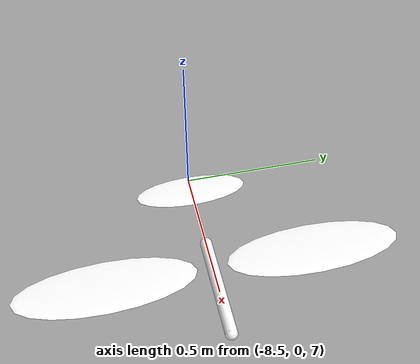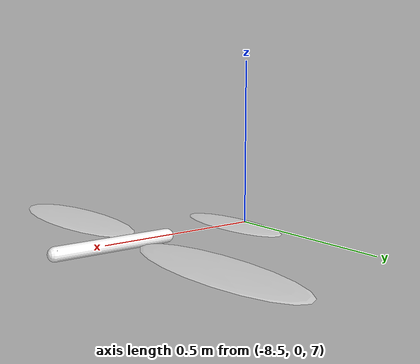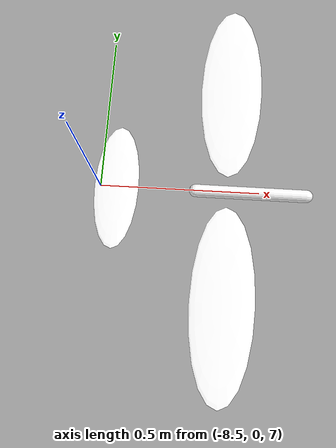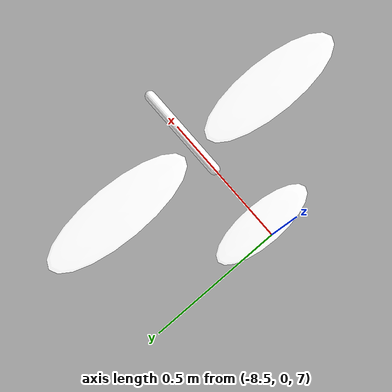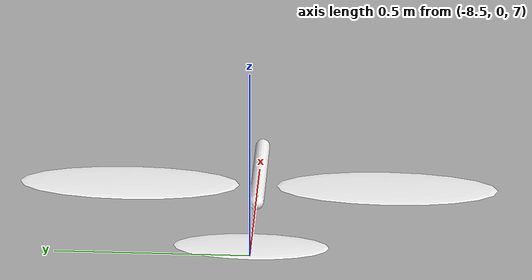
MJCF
<mujoco model="FlappyBird">
<!-- NOTE:
    - This is a very simplified version of flappy bird
    -->
  <compiler angle="radian" meshdir="meshes/" balanceinertia="true" />
  <option impratio="1" gravity="0 0 -9.81"  integrator="implicit" density="1.225" viscosity="1.789e-5"> Uncomment this to enable aerodynamics
  </option>
  <visual>
    <global offwidth="3000" offheight="3000"/>
  </visual>
  <asset>
    <texture builtin="gradient" type="skybox" height="100" width="100" rgb1="1 1 1" rgb2=".6 .8 1"/>
    <texture name="texgeom" builtin="flat" height="1278" mark="cross" markrgb="1 1 1" random="0.01" rgb1="0.8 0.6 0.4" rgb2="0.8 0.6 0.4" type="cube" width="127"/>
    <texture name="texplane" builtin="checker" height="1000" width="1000" rgb1="0 0 0" rgb2="0.8 0.8 0.8" type="2d"/>
    <material name="MatPlane" reflectance="0.5" shininess="1" specular="1" texrepeat="20 20" texture="texplane"/>
  </asset>

  <default>
    <geom contype="0" conaffinity="0" condim="1" solref="0.001 1"/>
    <equality solref="1e-10 1"/>
    <default class="visual">
      <geom group="2" type="mesh" contype="0" conaffinity="0" rgba="1 1 1 1" density="0" />
    </default>
    <default class="collision">
      <geom contype="1" group="3" density="0" />
    </default>
    <default class="aerodynamics">
      <geom group="2" type="mesh" contype="0" conaffinity="0" rgba="1 1 1 1" density="0" fluidshape="ellipsoid" fluidcoef="1.0 0.1 2.0 1.7 1.0"/>
    </default>
  </default>

  <worldbody>
    <light cutoff="100" diffuse="1 1 1" dir="-0 0 -1.3" directional="true" exponent="1" pos="0 0 1.3" specular=".1 .1 .1"/>
    <geom contype="1" conaffinity="1" condim="3" material="MatPlane" name="floor" pos="0 0 0" rgba="0.4 0.3 0.3 1" size="20 20 0.2" type="plane"/>
    <body name='Base' pos='-8 0 7' quat="1 0 0 0">
      <freejoint/>

      <geom class="collision" type="capsule" size="0.02" fromto="0.15 0 0 -0.2 0 0" mass="0.02"/>
      <geom class="visual" type="capsule" size="0.02" fromto="0.15 0 0 -0.2 0 0"/>
      <site name="body_frame" pos="0 0 0" quat="1 0 0 0"/>

      <body name="Wing_L" pos="-0.1 0.35 0" quat="1 0 0 0">
        <joint name="J_flap_L" pos="0 -0.35 0" axis="1 0 0"/>
        <joint name="J_pitch_L" pos="0 -0.35 0" axis="0 1 0"/>
        <geom class="collision" type="ellipsoid" size="0.1 0.3 0.005" mass="0.01"/>
        <geom class="aerodynamics" type="ellipsoid" size="0.1 0.3 0.005"/>
      </body>

      <body name="Wing_R" pos="-0.1 -0.35 0" quat="1 0 0 0">
        <joint name="J_flap_R" pos="0 0.35 0" axis="-1 0 0"/>
        <joint name="J_pitch_R" pos="0 0.35 0" axis="0 1 0"/>
        <geom class="collision" type="ellipsoid" size="0.1 0.3 0.005" mass="0.01"/>
        <geom class="aerodynamics" type="ellipsoid" size="0.1 0.3 0.005"/>
      </body>

      <body name="Tail" pos="-0.45 0 0" quat="1 0 0 0">
        <joint name="J_tail" pos="0.075 0 0" axis="0 1 0"/>
        <geom class="collision" type="ellipsoid" size="0.07 0.2 0.005" mass="0.005"/>
        <geom class="aerodynamics" type="ellipsoid" size="0.07 0.2 0.005"/>
      </body>
    </body>
  </worldbody>

  <sensor>
    <framepos name="Body_pos" objtype="site" objname="body_frame"/>       <!-- datasensor[0:3] -->
    <framequat name="Body_quat" objtype="site" objname="body_frame"/>     <!-- datasensor[3:7] -->
    <framelinvel name="Body_linvel" objtype="site" objname="body_frame"/> <!-- datasensor[7:10] -->
    <gyro name="Body_angvel_local" site="body_frame"/>                    <!-- datasensor[10:13] -->
  </sensor>

  <actuator>
    <position name="flap_L" joint="J_flap_L" ctrllimited="true" ctrlrange="-1.5 1.5" kp="20"/>
    <position name="pitch_L" joint="J_pitch_L" ctrllimited="true" ctrlrange="-1.5 1.5" kp="20"/>
    <position name="flap_R" joint="J_flap_R" ctrllimited="true" ctrlrange="-1.5 1.5" kp="20"/>
    <position name="pitch_R" joint="J_pitch_R" ctrllimited="true" ctrlrange="-1.5 1.5" kp="20"/>
    <velocity name="flap_L_vel" joint="J_flap_L" ctrllimited="true" ctrlrange="-0.7 0.7" kv="1"/>
    <velocity name="pitch_L_vel" joint="J_pitch_L" ctrllimited="true" ctrlrange="-0.7 0.7" kv="1"/>
    <velocity name="flap_R_vel" joint="J_flap_R" ctrllimited="true" ctrlrange="-0.7 0.7" kv="1"/>
    <velocity name="pitch_R_vel" joint="J_pitch_R" ctrllimited="true" ctrlrange="-0.7 0.7" kv="1"/>
    <position name="tail_angle" joint="J_tail" ctrllimited="true" ctrlrange="-0.7 0.7" kp="10"/>
    <velocity name="tail_vel" joint="J_tail" ctrllimited="true" ctrlrange="-0.7 0.7" kv="1"/>
  </actuator>

</mujoco>
